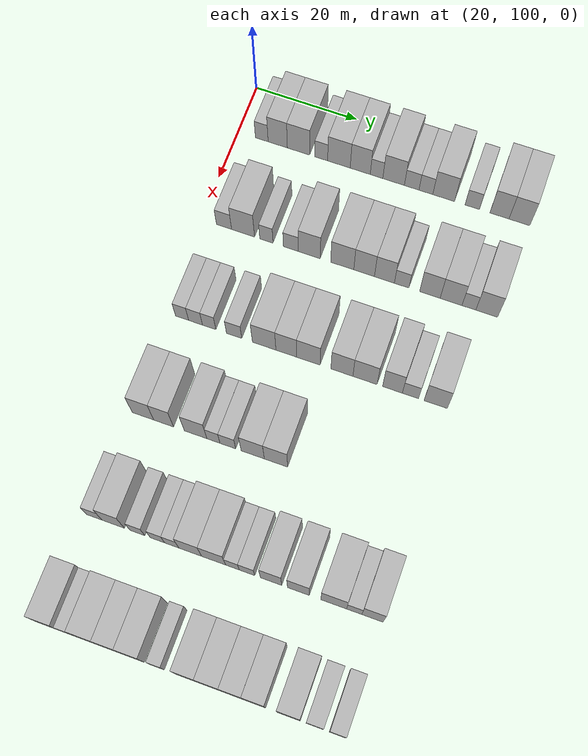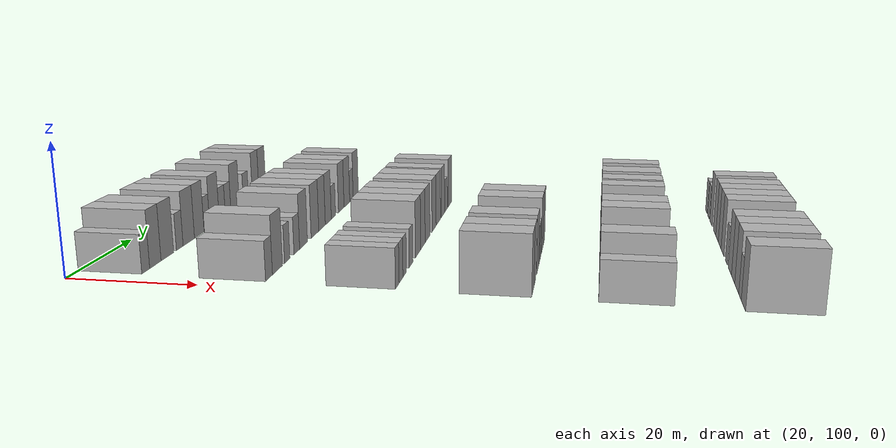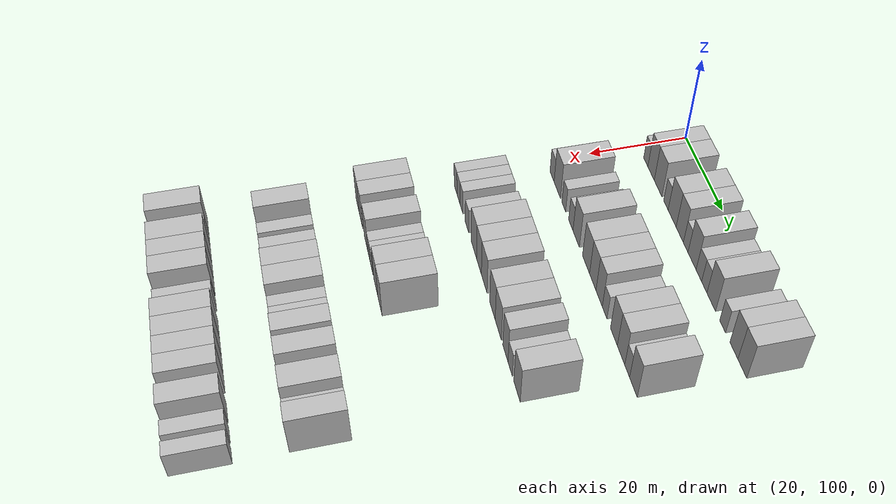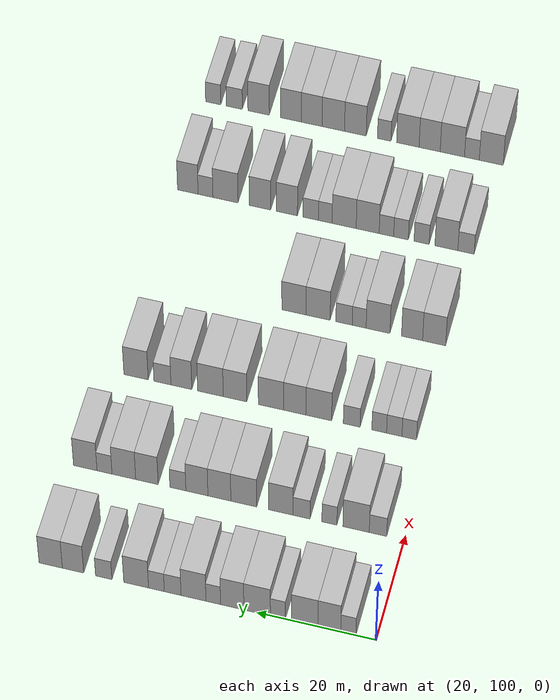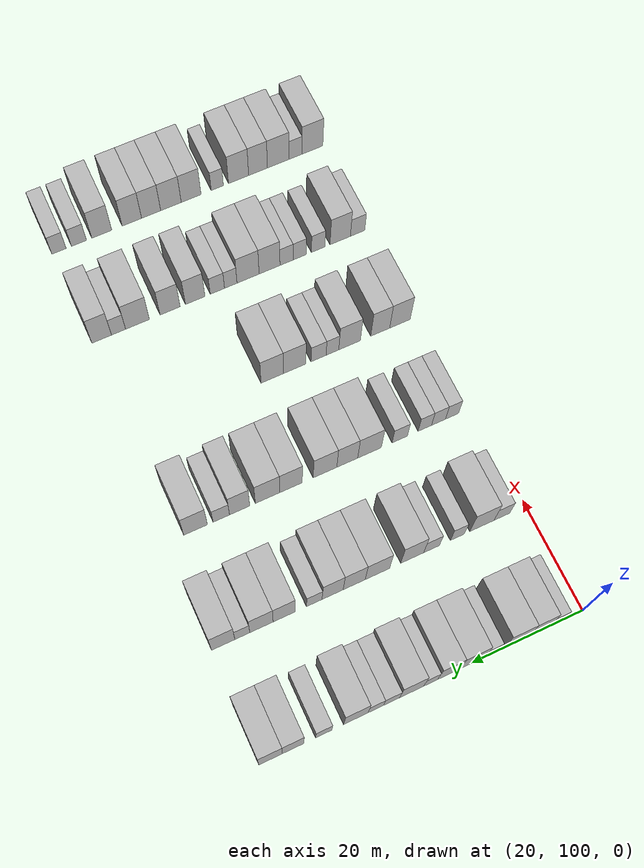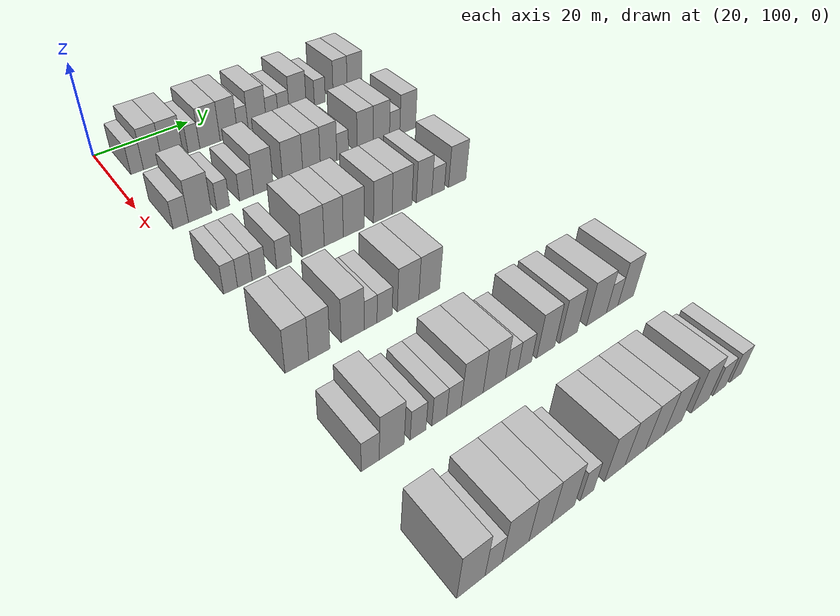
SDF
<sdf version="1.6">
 <world name="default">
  <model name="building_116">
   <static>1</static>
   <pose>25.0000 104.6992 0 0.000000 0.000000 0.000000</pose>
   <link name="link">
    <pose>0 0 3.00 0 0 0</pose>
    <collision name="collision"><geometry><box><size>10.0000 2.5293 6.0000</size></box></geometry></collision>
    <visual name="visual">
     <cast_shadows>0</cast_shadows>
     <geometry><box><size>10.0000 2.5293 6.0000</size></box></geometry>
     <material>
      <script>
       <uri>model://HANNAS_wall/materials/scripts</uri>
       <uri>model://HANNAS_wall/materials/textures</uri>
       <name>vrc/HANNAS_wall</name>
      </script>
     </material>
    </visual>
   </link>
  </model>
  <model name="building_117">
   <static>1</static>
   <pose>25.0000 107.8655 0 0.000000 0.000000 0.000000</pose>
   <link name="link">
    <pose>0 0 4.50 0 0 0</pose>
    <collision name="collision"><geometry><box><size>10.0000 3.8033 9.0000</size></box></geometry></collision>
    <visual name="visual">
     <cast_shadows>0</cast_shadows>
     <geometry><box><size>10.0000 3.8033 9.0000</size></box></geometry>
     <material>
      <script>
       <uri>model://HANNAS_wall/materials/scripts</uri>
       <uri>model://HANNAS_wall/materials/textures</uri>
       <name>vrc/HANNAS_wall</name>
      </script>
     </material>
    </visual>
   </link>
  </model>
  <model name="building_118">
   <static>1</static>
   <pose>25.0000 111.9787 0 0.000000 0.000000 0.000000</pose>
   <link name="link">
    <pose>0 0 4.50 0 0 0</pose>
    <collision name="collision"><geometry><box><size>10.0000 4.4231 9.0000</size></box></geometry></collision>
    <visual name="visual">
     <cast_shadows>0</cast_shadows>
     <geometry><box><size>10.0000 4.4231 9.0000</size></box></geometry>
     <material>
      <script>
       <uri>model://HANNAS_wall/materials/scripts</uri>
       <uri>model://HANNAS_wall/materials/textures</uri>
       <name>vrc/HANNAS_wall</name>
      </script>
     </material>
    </visual>
   </link>
  </model>
  <model name="building_119">
   <static>1</static>
   <pose>25.0000 116.4488 0 0.000000 0.000000 0.000000</pose>
   <link name="link">
    <pose>0 0 3.00 0 0 0</pose>
    <collision name="collision"><geometry><box><size>10.0000 2.5171 6.0000</size></box></geometry></collision>
    <visual name="visual">
     <cast_shadows>0</cast_shadows>
     <geometry><box><size>10.0000 2.5171 6.0000</size></box></geometry>
     <material>
      <script>
       <uri>model://HANNAS_wall/materials/scripts</uri>
       <uri>model://HANNAS_wall/materials/textures</uri>
       <name>vrc/HANNAS_wall</name>
      </script>
     </material>
    </visual>
   </link>
  </model>
  <model name="building_120">
   <static>1</static>
   <pose>25.0000 119.9229 0 0.000000 0.000000 0.000000</pose>
   <link name="link">
    <pose>0 0 4.50 0 0 0</pose>
    <collision name="collision"><geometry><box><size>10.0000 4.4311 9.0000</size></box></geometry></collision>
    <visual name="visual">
     <cast_shadows>0</cast_shadows>
     <geometry><box><size>10.0000 4.4311 9.0000</size></box></geometry>
     <material>
      <script>
       <uri>model://HANNAS_wall/materials/scripts</uri>
       <uri>model://HANNAS_wall/materials/textures</uri>
       <name>vrc/HANNAS_wall</name>
      </script>
     </material>
    </visual>
   </link>
  </model>
  <model name="building_121">
   <static>1</static>
   <pose>25.0000 124.0963 0 0.000000 0.000000 0.000000</pose>
   <link name="link">
    <pose>0 0 4.50 0 0 0</pose>
    <collision name="collision"><geometry><box><size>10.0000 3.9156 9.0000</size></box></geometry></collision>
    <visual name="visual">
     <cast_shadows>0</cast_shadows>
     <geometry><box><size>10.0000 3.9156 9.0000</size></box></geometry>
     <material>
      <script>
       <uri>model://HANNAS_wall/materials/scripts</uri>
       <uri>model://HANNAS_wall/materials/textures</uri>
       <name>vrc/HANNAS_wall</name>
      </script>
     </material>
    </visual>
   </link>
  </model>
  <model name="building_122">
   <static>1</static>
   <pose>25.0000 127.2778 0 0.000000 0.000000 0.000000</pose>
   <link name="link">
    <pose>0 0 3.00 0 0 0</pose>
    <collision name="collision"><geometry><box><size>10.0000 2.4475 6.0000</size></box></geometry></collision>
    <visual name="visual">
     <cast_shadows>0</cast_shadows>
     <geometry><box><size>10.0000 2.4475 6.0000</size></box></geometry>
     <material>
      <script>
       <uri>model://HANNAS_wall/materials/scripts</uri>
       <uri>model://HANNAS_wall/materials/textures</uri>
       <name>vrc/HANNAS_wall</name>
      </script>
     </material>
    </visual>
   </link>
  </model>
  <model name="building_123">
   <static>1</static>
   <pose>25.0000 130.5969 0 0.000000 0.000000 0.000000</pose>
   <link name="link">
    <pose>0 0 4.50 0 0 0</pose>
    <collision name="collision"><geometry><box><size>10.0000 4.1907 9.0000</size></box></geometry></collision>
    <visual name="visual">
     <cast_shadows>0</cast_shadows>
     <geometry><box><size>10.0000 4.1907 9.0000</size></box></geometry>
     <material>
      <script>
       <uri>model://HANNAS_wall/materials/scripts</uri>
       <uri>model://HANNAS_wall/materials/textures</uri>
       <name>vrc/HANNAS_wall</name>
      </script>
     </material>
    </visual>
   </link>
  </model>
  <model name="building_124">
   <static>1</static>
   <pose>25.0000 134.1016 0 0.000000 0.000000 0.000000</pose>
   <link name="link">
    <pose>0 0 3.00 0 0 0</pose>
    <collision name="collision"><geometry><box><size>10.0000 2.8187 6.0000</size></box></geometry></collision>
    <visual name="visual">
     <cast_shadows>0</cast_shadows>
     <geometry><box><size>10.0000 2.8187 6.0000</size></box></geometry>
     <material>
      <script>
       <uri>model://HANNAS_wall/materials/scripts</uri>
       <uri>model://HANNAS_wall/materials/textures</uri>
       <name>vrc/HANNAS_wall</name>
      </script>
     </material>
    </visual>
   </link>
  </model>
  <model name="building_125">
   <static>1</static>
   <pose>25.0000 136.8427 0 0.000000 0.000000 0.000000</pose>
   <link name="link">
    <pose>0 0 3.00 0 0 0</pose>
    <collision name="collision"><geometry><box><size>10.0000 2.6635 6.0000</size></box></geometry></collision>
    <visual name="visual">
     <cast_shadows>0</cast_shadows>
     <geometry><box><size>10.0000 2.6635 6.0000</size></box></geometry>
     <material>
      <script>
       <uri>model://HANNAS_wall/materials/scripts</uri>
       <uri>model://HANNAS_wall/materials/textures</uri>
       <name>vrc/HANNAS_wall</name>
      </script>
     </material>
    </visual>
   </link>
  </model>
  <model name="building_126">
   <static>1</static>
   <pose>25.0000 140.2651 0 0.000000 0.000000 0.000000</pose>
   <link name="link">
    <pose>0 0 4.50 0 0 0</pose>
    <collision name="collision"><geometry><box><size>10.0000 4.1813 9.0000</size></box></geometry></collision>
    <visual name="visual">
     <cast_shadows>0</cast_shadows>
     <geometry><box><size>10.0000 4.1813 9.0000</size></box></geometry>
     <material>
      <script>
       <uri>model://HANNAS_wall/materials/scripts</uri>
       <uri>model://HANNAS_wall/materials/textures</uri>
       <name>vrc/HANNAS_wall</name>
      </script>
     </material>
    </visual>
   </link>
  </model>
  <model name="building_127">
   <static>1</static>
   <pose>25.0000 145.7392 0 0.000000 0.000000 0.000000</pose>
   <link name="link">
    <pose>0 0 3.00 0 0 0</pose>
    <collision name="collision"><geometry><box><size>10.0000 2.7670 6.0000</size></box></geometry></collision>
    <visual name="visual">
     <cast_shadows>0</cast_shadows>
     <geometry><box><size>10.0000 2.7670 6.0000</size></box></geometry>
     <material>
      <script>
       <uri>model://HANNAS_wall/materials/scripts</uri>
       <uri>model://HANNAS_wall/materials/textures</uri>
       <name>vrc/HANNAS_wall</name>
      </script>
     </material>
    </visual>
   </link>
  </model>
  <model name="building_128">
   <static>1</static>
   <pose>25.0000 150.9312 0 0.000000 0.000000 0.000000</pose>
   <link name="link">
    <pose>0 0 4.50 0 0 0</pose>
    <collision name="collision"><geometry><box><size>10.0000 3.6171 9.0000</size></box></geometry></collision>
    <visual name="visual">
     <cast_shadows>0</cast_shadows>
     <geometry><box><size>10.0000 3.6171 9.0000</size></box></geometry>
     <material>
      <script>
       <uri>model://HANNAS_wall/materials/scripts</uri>
       <uri>model://HANNAS_wall/materials/textures</uri>
       <name>vrc/HANNAS_wall</name>
      </script>
     </material>
    </visual>
   </link>
  </model>
  <model name="building_129">
   <static>1</static>
   <pose>25.0000 154.7166 0 0.000000 0.000000 0.000000</pose>
   <link name="link">
    <pose>0 0 4.50 0 0 0</pose>
    <collision name="collision"><geometry><box><size>10.0000 3.9537 9.0000</size></box></geometry></collision>
    <visual name="visual">
     <cast_shadows>0</cast_shadows>
     <geometry><box><size>10.0000 3.9537 9.0000</size></box></geometry>
     <material>
      <script>
       <uri>model://HANNAS_wall/materials/scripts</uri>
       <uri>model://HANNAS_wall/materials/textures</uri>
       <name>vrc/HANNAS_wall</name>
      </script>
     </material>
    </visual>
   </link>
  </model>
  <model name="building_282">
   <static>1</static>
   <pose>44.0000 104.4589 0 0.000000 0.000000 0.000000</pose>
   <link name="link">
    <pose>0 0 3.00 0 0 0</pose>
    <collision name="collision"><geometry><box><size>10.0000 2.9417 6.0000</size></box></geometry></collision>
    <visual name="visual">
     <cast_shadows>0</cast_shadows>
     <geometry><box><size>10.0000 2.9417 6.0000</size></box></geometry>
     <material>
      <script>
       <uri>model://HANNAS_wall/materials/scripts</uri>
       <uri>model://HANNAS_wall/materials/textures</uri>
       <name>vrc/HANNAS_wall</name>
      </script>
     </material>
    </visual>
   </link>
  </model>
  <model name="building_283">
   <static>1</static>
   <pose>44.0000 108.1613 0 0.000000 0.000000 0.000000</pose>
   <link name="link">
    <pose>0 0 4.50 0 0 0</pose>
    <collision name="collision"><geometry><box><size>10.0000 4.4629 9.0000</size></box></geometry></collision>
    <visual name="visual">
     <cast_shadows>0</cast_shadows>
     <geometry><box><size>10.0000 4.4629 9.0000</size></box></geometry>
     <material>
      <script>
       <uri>model://HANNAS_wall/materials/scripts</uri>
       <uri>model://HANNAS_wall/materials/textures</uri>
       <name>vrc/HANNAS_wall</name>
      </script>
     </material>
    </visual>
   </link>
  </model>
  <model name="building_284">
   <static>1</static>
   <pose>44.0000 112.6686 0 0.000000 0.000000 0.000000</pose>
   <link name="link">
    <pose>0 0 3.00 0 0 0</pose>
    <collision name="collision"><geometry><box><size>10.0000 2.5518 6.0000</size></box></geometry></collision>
    <visual name="visual">
     <cast_shadows>0</cast_shadows>
     <geometry><box><size>10.0000 2.5518 6.0000</size></box></geometry>
     <material>
      <script>
       <uri>model://HANNAS_wall/materials/scripts</uri>
       <uri>model://HANNAS_wall/materials/textures</uri>
       <name>vrc/HANNAS_wall</name>
      </script>
     </material>
    </visual>
   </link>
  </model>
  <model name="building_285">
   <static>1</static>
   <pose>44.0000 117.3820 0 0.000000 0.000000 0.000000</pose>
   <link name="link">
    <pose>0 0 3.00 0 0 0</pose>
    <collision name="collision"><geometry><box><size>10.0000 2.8751 6.0000</size></box></geometry></collision>
    <visual name="visual">
     <cast_shadows>0</cast_shadows>
     <geometry><box><size>10.0000 2.8751 6.0000</size></box></geometry>
     <material>
      <script>
       <uri>model://HANNAS_wall/materials/scripts</uri>
       <uri>model://HANNAS_wall/materials/textures</uri>
       <name>vrc/HANNAS_wall</name>
      </script>
     </material>
    </visual>
   </link>
  </model>
  <model name="building_286">
   <static>1</static>
   <pose>44.0000 120.9029 0 0.000000 0.000000 0.000000</pose>
   <link name="link">
    <pose>0 0 4.50 0 0 0</pose>
    <collision name="collision"><geometry><box><size>10.0000 4.1667 9.0000</size></box></geometry></collision>
    <visual name="visual">
     <cast_shadows>0</cast_shadows>
     <geometry><box><size>10.0000 4.1667 9.0000</size></box></geometry>
     <material>
      <script>
       <uri>model://HANNAS_wall/materials/scripts</uri>
       <uri>model://HANNAS_wall/materials/textures</uri>
       <name>vrc/HANNAS_wall</name>
      </script>
     </material>
    </visual>
   </link>
  </model>
  <model name="building_287">
   <static>1</static>
   <pose>44.0000 127.1863 0 0.000000 0.000000 0.000000</pose>
   <link name="link">
    <pose>0 0 4.50 0 0 0</pose>
    <collision name="collision"><geometry><box><size>10.0000 4.4002 9.0000</size></box></geometry></collision>
    <visual name="visual">
     <cast_shadows>0</cast_shadows>
     <geometry><box><size>10.0000 4.4002 9.0000</size></box></geometry>
     <material>
      <script>
       <uri>model://HANNAS_wall/materials/scripts</uri>
       <uri>model://HANNAS_wall/materials/textures</uri>
       <name>vrc/HANNAS_wall</name>
      </script>
     </material>
    </visual>
   </link>
  </model>
  <model name="building_288">
   <static>1</static>
   <pose>44.0000 131.3420 0 0.000000 0.000000 0.000000</pose>
   <link name="link">
    <pose>0 0 4.50 0 0 0</pose>
    <collision name="collision"><geometry><box><size>10.0000 3.9112 9.0000</size></box></geometry></collision>
    <visual name="visual">
     <cast_shadows>0</cast_shadows>
     <geometry><box><size>10.0000 3.9112 9.0000</size></box></geometry>
     <material>
      <script>
       <uri>model://HANNAS_wall/materials/scripts</uri>
       <uri>model://HANNAS_wall/materials/textures</uri>
       <name>vrc/HANNAS_wall</name>
      </script>
     </material>
    </visual>
   </link>
  </model>
  <model name="building_289">
   <static>1</static>
   <pose>44.0000 135.1767 0 0.000000 0.000000 0.000000</pose>
   <link name="link">
    <pose>0 0 4.50 0 0 0</pose>
    <collision name="collision"><geometry><box><size>10.0000 3.7581 9.0000</size></box></geometry></collision>
    <visual name="visual">
     <cast_shadows>0</cast_shadows>
     <geometry><box><size>10.0000 3.7581 9.0000</size></box></geometry>
     <material>
      <script>
       <uri>model://HANNAS_wall/materials/scripts</uri>
       <uri>model://HANNAS_wall/materials/textures</uri>
       <name>vrc/HANNAS_wall</name>
      </script>
     </material>
    </visual>
   </link>
  </model>
  <model name="building_290">
   <static>1</static>
   <pose>44.0000 138.4250 0 0.000000 0.000000 0.000000</pose>
   <link name="link">
    <pose>0 0 3.00 0 0 0</pose>
    <collision name="collision"><geometry><box><size>10.0000 2.7385 6.0000</size></box></geometry></collision>
    <visual name="visual">
     <cast_shadows>0</cast_shadows>
     <geometry><box><size>10.0000 2.7385 6.0000</size></box></geometry>
     <material>
      <script>
       <uri>model://HANNAS_wall/materials/scripts</uri>
       <uri>model://HANNAS_wall/materials/textures</uri>
       <name>vrc/HANNAS_wall</name>
      </script>
     </material>
    </visual>
   </link>
  </model>
  <model name="building_291">
   <static>1</static>
   <pose>44.0000 143.7155 0 0.000000 0.000000 0.000000</pose>
   <link name="link">
    <pose>0 0 4.50 0 0 0</pose>
    <collision name="collision"><geometry><box><size>10.0000 3.8426 9.0000</size></box></geometry></collision>
    <visual name="visual">
     <cast_shadows>0</cast_shadows>
     <geometry><box><size>10.0000 3.8426 9.0000</size></box></geometry>
     <material>
      <script>
       <uri>model://HANNAS_wall/materials/scripts</uri>
       <uri>model://HANNAS_wall/materials/textures</uri>
       <name>vrc/HANNAS_wall</name>
      </script>
     </material>
    </visual>
   </link>
  </model>
  <model name="building_292">
   <static>1</static>
   <pose>44.0000 147.6690 0 0.000000 0.000000 0.000000</pose>
   <link name="link">
    <pose>0 0 4.50 0 0 0</pose>
    <collision name="collision"><geometry><box><size>10.0000 4.0643 9.0000</size></box></geometry></collision>
    <visual name="visual">
     <cast_shadows>0</cast_shadows>
     <geometry><box><size>10.0000 4.0643 9.0000</size></box></geometry>
     <material>
      <script>
       <uri>model://HANNAS_wall/materials/scripts</uri>
       <uri>model://HANNAS_wall/materials/textures</uri>
       <name>vrc/HANNAS_wall</name>
      </script>
     </material>
    </visual>
   </link>
  </model>
  <model name="building_293">
   <static>1</static>
   <pose>44.0000 150.9873 0 0.000000 0.000000 0.000000</pose>
   <link name="link">
    <pose>0 0 3.00 0 0 0</pose>
    <collision name="collision"><geometry><box><size>10.0000 2.5724 6.0000</size></box></geometry></collision>
    <visual name="visual">
     <cast_shadows>0</cast_shadows>
     <geometry><box><size>10.0000 2.5724 6.0000</size></box></geometry>
     <material>
      <script>
       <uri>model://HANNAS_wall/materials/scripts</uri>
       <uri>model://HANNAS_wall/materials/textures</uri>
       <name>vrc/HANNAS_wall</name>
      </script>
     </material>
    </visual>
   </link>
  </model>
  <model name="building_294">
   <static>1</static>
   <pose>44.0000 154.2898 0 0.000000 0.000000 0.000000</pose>
   <link name="link">
    <pose>0 0 4.50 0 0 0</pose>
    <collision name="collision"><geometry><box><size>10.0000 4.0327 9.0000</size></box></geometry></collision>
    <visual name="visual">
     <cast_shadows>0</cast_shadows>
     <geometry><box><size>10.0000 4.0327 9.0000</size></box></geometry>
     <material>
      <script>
       <uri>model://HANNAS_wall/materials/scripts</uri>
       <uri>model://HANNAS_wall/materials/textures</uri>
       <name>vrc/HANNAS_wall</name>
      </script>
     </material>
    </visual>
   </link>
  </model>
  <model name="building_448">
   <static>1</static>
   <pose>63.0000 103.8126 0 0.000000 0.000000 0.000000</pose>
   <link name="link">
    <pose>0 0 3.00 0 0 0</pose>
    <collision name="collision"><geometry><box><size>10.0000 2.4909 6.0000</size></box></geometry></collision>
    <visual name="visual">
     <cast_shadows>0</cast_shadows>
     <geometry><box><size>10.0000 2.4909 6.0000</size></box></geometry>
     <material>
      <script>
       <uri>model://HANNAS_wall/materials/scripts</uri>
       <uri>model://HANNAS_wall/materials/textures</uri>
       <name>vrc/HANNAS_wall</name>
      </script>
     </material>
    </visual>
   </link>
  </model>
  <model name="building_449">
   <static>1</static>
   <pose>63.0000 106.3737 0 0.000000 0.000000 0.000000</pose>
   <link name="link">
    <pose>0 0 3.00 0 0 0</pose>
    <collision name="collision"><geometry><box><size>10.0000 2.6311 6.0000</size></box></geometry></collision>
    <visual name="visual">
     <cast_shadows>0</cast_shadows>
     <geometry><box><size>10.0000 2.6311 6.0000</size></box></geometry>
     <material>
      <script>
       <uri>model://HANNAS_wall/materials/scripts</uri>
       <uri>model://HANNAS_wall/materials/textures</uri>
       <name>vrc/HANNAS_wall</name>
      </script>
     </material>
    </visual>
   </link>
  </model>
  <model name="building_450">
   <static>1</static>
   <pose>63.0000 108.9542 0 0.000000 0.000000 0.000000</pose>
   <link name="link">
    <pose>0 0 3.00 0 0 0</pose>
    <collision name="collision"><geometry><box><size>10.0000 2.5299 6.0000</size></box></geometry></collision>
    <visual name="visual">
     <cast_shadows>0</cast_shadows>
     <geometry><box><size>10.0000 2.5299 6.0000</size></box></geometry>
     <material>
      <script>
       <uri>model://HANNAS_wall/materials/scripts</uri>
       <uri>model://HANNAS_wall/materials/textures</uri>
       <name>vrc/HANNAS_wall</name>
      </script>
     </material>
    </visual>
   </link>
  </model>
  <model name="building_451">
   <static>1</static>
   <pose>63.0000 113.6609 0 0.000000 0.000000 0.000000</pose>
   <link name="link">
    <pose>0 0 3.00 0 0 0</pose>
    <collision name="collision"><geometry><box><size>10.0000 2.8834 6.0000</size></box></geometry></collision>
    <visual name="visual">
     <cast_shadows>0</cast_shadows>
     <geometry><box><size>10.0000 2.8834 6.0000</size></box></geometry>
     <material>
      <script>
       <uri>model://HANNAS_wall/materials/scripts</uri>
       <uri>model://HANNAS_wall/materials/textures</uri>
       <name>vrc/HANNAS_wall</name>
      </script>
     </material>
    </visual>
   </link>
  </model>
  <model name="building_452">
   <static>1</static>
   <pose>63.0000 119.2993 0 0.000000 0.000000 0.000000</pose>
   <link name="link">
    <pose>0 0 4.50 0 0 0</pose>
    <collision name="collision"><geometry><box><size>10.0000 4.3934 9.0000</size></box></geometry></collision>
    <visual name="visual">
     <cast_shadows>0</cast_shadows>
     <geometry><box><size>10.0000 4.3934 9.0000</size></box></geometry>
     <material>
      <script>
       <uri>model://HANNAS_wall/materials/scripts</uri>
       <uri>model://HANNAS_wall/materials/textures</uri>
       <name>vrc/HANNAS_wall</name>
      </script>
     </material>
    </visual>
   </link>
  </model>
  <model name="building_453">
   <static>1</static>
   <pose>63.0000 123.4294 0 0.000000 0.000000 0.000000</pose>
   <link name="link">
    <pose>0 0 4.50 0 0 0</pose>
    <collision name="collision"><geometry><box><size>10.0000 3.8668 9.0000</size></box></geometry></collision>
    <visual name="visual">
     <cast_shadows>0</cast_shadows>
     <geometry><box><size>10.0000 3.8668 9.0000</size></box></geometry>
     <material>
      <script>
       <uri>model://HANNAS_wall/materials/scripts</uri>
       <uri>model://HANNAS_wall/materials/textures</uri>
       <name>vrc/HANNAS_wall</name>
      </script>
     </material>
    </visual>
   </link>
  </model>
  <model name="building_454">
   <static>1</static>
   <pose>63.0000 127.5350 0 0.000000 0.000000 0.000000</pose>
   <link name="link">
    <pose>0 0 4.50 0 0 0</pose>
    <collision name="collision"><geometry><box><size>10.0000 4.3444 9.0000</size></box></geometry></collision>
    <visual name="visual">
     <cast_shadows>0</cast_shadows>
     <geometry><box><size>10.0000 4.3444 9.0000</size></box></geometry>
     <material>
      <script>
       <uri>model://HANNAS_wall/materials/scripts</uri>
       <uri>model://HANNAS_wall/materials/textures</uri>
       <name>vrc/HANNAS_wall</name>
      </script>
     </material>
    </visual>
   </link>
  </model>
  <model name="building_455">
   <static>1</static>
   <pose>63.0000 133.7358 0 0.000000 0.000000 0.000000</pose>
   <link name="link">
    <pose>0 0 4.50 0 0 0</pose>
    <collision name="collision"><geometry><box><size>10.0000 4.0572 9.0000</size></box></geometry></collision>
    <visual name="visual">
     <cast_shadows>0</cast_shadows>
     <geometry><box><size>10.0000 4.0572 9.0000</size></box></geometry>
     <material>
      <script>
       <uri>model://HANNAS_wall/materials/scripts</uri>
       <uri>model://HANNAS_wall/materials/textures</uri>
       <name>vrc/HANNAS_wall</name>
      </script>
     </material>
    </visual>
   </link>
  </model>
  <model name="building_456">
   <static>1</static>
   <pose>63.0000 137.9854 0 0.000000 0.000000 0.000000</pose>
   <link name="link">
    <pose>0 0 4.50 0 0 0</pose>
    <collision name="collision"><geometry><box><size>10.0000 4.4420 9.0000</size></box></geometry></collision>
    <visual name="visual">
     <cast_shadows>0</cast_shadows>
     <geometry><box><size>10.0000 4.4420 9.0000</size></box></geometry>
     <material>
      <script>
       <uri>model://HANNAS_wall/materials/scripts</uri>
       <uri>model://HANNAS_wall/materials/textures</uri>
       <name>vrc/HANNAS_wall</name>
      </script>
     </material>
    </visual>
   </link>
  </model>
  <model name="building_457">
   <static>1</static>
   <pose>63.0000 143.0158 0 0.000000 0.000000 0.000000</pose>
   <link name="link">
    <pose>0 0 4.50 0 0 0</pose>
    <collision name="collision"><geometry><box><size>10.0000 3.6188 9.0000</size></box></geometry></collision>
    <visual name="visual">
     <cast_shadows>0</cast_shadows>
     <geometry><box><size>10.0000 3.6188 9.0000</size></box></geometry>
     <material>
      <script>
       <uri>model://HANNAS_wall/materials/scripts</uri>
       <uri>model://HANNAS_wall/materials/textures</uri>
       <name>vrc/HANNAS_wall</name>
      </script>
     </material>
    </visual>
   </link>
  </model>
  <model name="building_458">
   <static>1</static>
   <pose>63.0000 146.2998 0 0.000000 0.000000 0.000000</pose>
   <link name="link">
    <pose>0 0 3.00 0 0 0</pose>
    <collision name="collision"><geometry><box><size>10.0000 2.9492 6.0000</size></box></geometry></collision>
    <visual name="visual">
     <cast_shadows>0</cast_shadows>
     <geometry><box><size>10.0000 2.9492 6.0000</size></box></geometry>
     <material>
      <script>
       <uri>model://HANNAS_wall/materials/scripts</uri>
       <uri>model://HANNAS_wall/materials/textures</uri>
       <name>vrc/HANNAS_wall</name>
      </script>
     </material>
    </visual>
   </link>
  </model>
  <model name="building_459">
   <static>1</static>
   <pose>63.0000 150.8831 0 0.000000 0.000000 0.000000</pose>
   <link name="link">
    <pose>0 0 4.50 0 0 0</pose>
    <collision name="collision"><geometry><box><size>10.0000 4.2174 9.0000</size></box></geometry></collision>
    <visual name="visual">
     <cast_shadows>0</cast_shadows>
     <geometry><box><size>10.0000 4.2174 9.0000</size></box></geometry>
     <material>
      <script>
       <uri>model://HANNAS_wall/materials/scripts</uri>
       <uri>model://HANNAS_wall/materials/textures</uri>
       <name>vrc/HANNAS_wall</name>
      </script>
     </material>
    </visual>
   </link>
  </model>
  <model name="building_620">
   <static>1</static>
   <pose>82.0000 104.1337 0 0.000000 0.000000 0.000000</pose>
   <link name="link">
    <pose>0 0 4.50 0 0 0</pose>
    <collision name="collision"><geometry><box><size>10.0000 3.9851 9.0000</size></box></geometry></collision>
    <visual name="visual">
     <cast_shadows>0</cast_shadows>
     <geometry><box><size>10.0000 3.9851 9.0000</size></box></geometry>
     <material>
      <script>
       <uri>model://HANNAS_wall/materials/scripts</uri>
       <uri>model://HANNAS_wall/materials/textures</uri>
       <name>vrc/HANNAS_wall</name>
      </script>
     </material>
    </visual>
   </link>
  </model>
  <model name="building_621">
   <static>1</static>
   <pose>82.0000 107.9526 0 0.000000 0.000000 0.000000</pose>
   <link name="link">
    <pose>0 0 4.50 0 0 0</pose>
    <collision name="collision"><geometry><box><size>10.0000 3.6526 9.0000</size></box></geometry></collision>
    <visual name="visual">
     <cast_shadows>0</cast_shadows>
     <geometry><box><size>10.0000 3.6526 9.0000</size></box></geometry>
     <material>
      <script>
       <uri>model://HANNAS_wall/materials/scripts</uri>
       <uri>model://HANNAS_wall/materials/textures</uri>
       <name>vrc/HANNAS_wall</name>
      </script>
     </material>
    </visual>
   </link>
  </model>
  <model name="building_622">
   <static>1</static>
   <pose>82.0000 113.8478 0 0.000000 0.000000 0.000000</pose>
   <link name="link">
    <pose>0 0 4.50 0 0 0</pose>
    <collision name="collision"><geometry><box><size>10.0000 4.1380 9.0000</size></box></geometry></collision>
    <visual name="visual">
     <cast_shadows>0</cast_shadows>
     <geometry><box><size>10.0000 4.1380 9.0000</size></box></geometry>
     <material>
      <script>
       <uri>model://HANNAS_wall/materials/scripts</uri>
       <uri>model://HANNAS_wall/materials/textures</uri>
       <name>vrc/HANNAS_wall</name>
      </script>
     </material>
    </visual>
   </link>
  </model>
  <model name="building_623">
   <static>1</static>
   <pose>82.0000 117.1201 0 0.000000 0.000000 0.000000</pose>
   <link name="link">
    <pose>0 0 3.00 0 0 0</pose>
    <collision name="collision"><geometry><box><size>10.0000 2.4066 6.0000</size></box></geometry></collision>
    <visual name="visual">
     <cast_shadows>0</cast_shadows>
     <geometry><box><size>10.0000 2.4066 6.0000</size></box></geometry>
     <material>
      <script>
       <uri>model://HANNAS_wall/materials/scripts</uri>
       <uri>model://HANNAS_wall/materials/textures</uri>
       <name>vrc/HANNAS_wall</name>
      </script>
     </material>
    </visual>
   </link>
  </model>
  <model name="building_624">
   <static>1</static>
   <pose>82.0000 119.7560 0 0.000000 0.000000 0.000000</pose>
   <link name="link">
    <pose>0 0 3.00 0 0 0</pose>
    <collision name="collision"><geometry><box><size>10.0000 2.8651 6.0000</size></box></geometry></collision>
    <visual name="visual">
     <cast_shadows>0</cast_shadows>
     <geometry><box><size>10.0000 2.8651 6.0000</size></box></geometry>
     <material>
      <script>
       <uri>model://HANNAS_wall/materials/scripts</uri>
       <uri>model://HANNAS_wall/materials/textures</uri>
       <name>vrc/HANNAS_wall</name>
      </script>
     </material>
    </visual>
   </link>
  </model>
  <model name="building_625">
   <static>1</static>
   <pose>82.0000 124.2914 0 0.000000 0.000000 0.000000</pose>
   <link name="link">
    <pose>0 0 4.50 0 0 0</pose>
    <collision name="collision"><geometry><box><size>10.0000 4.2058 9.0000</size></box></geometry></collision>
    <visual name="visual">
     <cast_shadows>0</cast_shadows>
     <geometry><box><size>10.0000 4.2058 9.0000</size></box></geometry>
     <material>
      <script>
       <uri>model://HANNAS_wall/materials/scripts</uri>
       <uri>model://HANNAS_wall/materials/textures</uri>
       <name>vrc/HANNAS_wall</name>
      </script>
     </material>
    </visual>
   </link>
  </model>
  <model name="building_626">
   <static>1</static>
   <pose>82.0000 128.5011 0 0.000000 0.000000 0.000000</pose>
   <link name="link">
    <pose>0 0 4.50 0 0 0</pose>
    <collision name="collision"><geometry><box><size>10.0000 4.2134 9.0000</size></box></geometry></collision>
    <visual name="visual">
     <cast_shadows>0</cast_shadows>
     <geometry><box><size>10.0000 4.2134 9.0000</size></box></geometry>
     <material>
      <script>
       <uri>model://HANNAS_wall/materials/scripts</uri>
       <uri>model://HANNAS_wall/materials/textures</uri>
       <name>vrc/HANNAS_wall</name>
      </script>
     </material>
    </visual>
   </link>
  </model>
  <model name="building_786">
   <static>1</static>
   <pose>101.0000 103.1046 0 0.000000 0.000000 0.000000</pose>
   <link name="link">
    <pose>0 0 3.00 0 0 0</pose>
    <collision name="collision"><geometry><box><size>10.0000 2.8525 6.0000</size></box></geometry></collision>
    <visual name="visual">
     <cast_shadows>0</cast_shadows>
     <geometry><box><size>10.0000 2.8525 6.0000</size></box></geometry>
     <material>
      <script>
       <uri>model://HANNAS_wall/materials/scripts</uri>
       <uri>model://HANNAS_wall/materials/textures</uri>
       <name>vrc/HANNAS_wall</name>
      </script>
     </material>
    </visual>
   </link>
  </model>
  <model name="building_787">
   <static>1</static>
   <pose>101.0000 106.5450 0 0.000000 0.000000 0.000000</pose>
   <link name="link">
    <pose>0 0 4.50 0 0 0</pose>
    <collision name="collision"><geometry><box><size>10.0000 4.0284 9.0000</size></box></geometry></collision>
    <visual name="visual">
     <cast_shadows>0</cast_shadows>
     <geometry><box><size>10.0000 4.0284 9.0000</size></box></geometry>
     <material>
      <script>
       <uri>model://HANNAS_wall/materials/scripts</uri>
       <uri>model://HANNAS_wall/materials/textures</uri>
       <name>vrc/HANNAS_wall</name>
      </script>
     </material>
    </visual>
   </link>
  </model>
  <model name="building_788">
   <static>1</static>
   <pose>101.0000 110.8907 0 0.000000 0.000000 0.000000</pose>
   <link name="link">
    <pose>0 0 3.00 0 0 0</pose>
    <collision name="collision"><geometry><box><size>10.0000 2.6630 6.0000</size></box></geometry></collision>
    <visual name="visual">
     <cast_shadows>0</cast_shadows>
     <geometry><box><size>10.0000 2.6630 6.0000</size></box></geometry>
     <material>
      <script>
       <uri>model://HANNAS_wall/materials/scripts</uri>
       <uri>model://HANNAS_wall/materials/textures</uri>
       <name>vrc/HANNAS_wall</name>
      </script>
     </material>
    </visual>
   </link>
  </model>
  <model name="building_789">
   <static>1</static>
   <pose>101.0000 114.5084 0 0.000000 0.000000 0.000000</pose>
   <link name="link">
    <pose>0 0 3.00 0 0 0</pose>
    <collision name="collision"><geometry><box><size>10.0000 2.5723 6.0000</size></box></geometry></collision>
    <visual name="visual">
     <cast_shadows>0</cast_shadows>
     <geometry><box><size>10.0000 2.5723 6.0000</size></box></geometry>
     <material>
      <script>
       <uri>model://HANNAS_wall/materials/scripts</uri>
       <uri>model://HANNAS_wall/materials/textures</uri>
       <name>vrc/HANNAS_wall</name>
      </script>
     </material>
    </visual>
   </link>
  </model>
  <model name="building_790">
   <static>1</static>
   <pose>101.0000 117.0721 0 0.000000 0.000000 0.000000</pose>
   <link name="link">
    <pose>0 0 3.00 0 0 0</pose>
    <collision name="collision"><geometry><box><size>10.0000 2.5552 6.0000</size></box></geometry></collision>
    <visual name="visual">
     <cast_shadows>0</cast_shadows>
     <geometry><box><size>10.0000 2.5552 6.0000</size></box></geometry>
     <material>
      <script>
       <uri>model://HANNAS_wall/materials/scripts</uri>
       <uri>model://HANNAS_wall/materials/textures</uri>
       <name>vrc/HANNAS_wall</name>
      </script>
     </material>
    </visual>
   </link>
  </model>
  <model name="building_791">
   <static>1</static>
   <pose>101.0000 120.3735 0 0.000000 0.000000 0.000000</pose>
   <link name="link">
    <pose>0 0 4.50 0 0 0</pose>
    <collision name="collision"><geometry><box><size>10.0000 4.0476 9.0000</size></box></geometry></collision>
    <visual name="visual">
     <cast_shadows>0</cast_shadows>
     <geometry><box><size>10.0000 4.0476 9.0000</size></box></geometry>
     <material>
      <script>
       <uri>model://HANNAS_wall/materials/scripts</uri>
       <uri>model://HANNAS_wall/materials/textures</uri>
       <name>vrc/HANNAS_wall</name>
      </script>
     </material>
    </visual>
   </link>
  </model>
  <model name="building_792">
   <static>1</static>
   <pose>101.0000 124.5246 0 0.000000 0.000000 0.000000</pose>
   <link name="link">
    <pose>0 0 4.50 0 0 0</pose>
    <collision name="collision"><geometry><box><size>10.0000 4.2546 9.0000</size></box></geometry></collision>
    <visual name="visual">
     <cast_shadows>0</cast_shadows>
     <geometry><box><size>10.0000 4.2546 9.0000</size></box></geometry>
     <material>
      <script>
       <uri>model://HANNAS_wall/materials/scripts</uri>
       <uri>model://HANNAS_wall/materials/textures</uri>
       <name>vrc/HANNAS_wall</name>
      </script>
     </material>
    </visual>
   </link>
  </model>
  <model name="building_793">
   <static>1</static>
   <pose>101.0000 127.8529 0 0.000000 0.000000 0.000000</pose>
   <link name="link">
    <pose>0 0 3.00 0 0 0</pose>
    <collision name="collision"><geometry><box><size>10.0000 2.4022 6.0000</size></box></geometry></collision>
    <visual name="visual">
     <cast_shadows>0</cast_shadows>
     <geometry><box><size>10.0000 2.4022 6.0000</size></box></geometry>
     <material>
      <script>
       <uri>model://HANNAS_wall/materials/scripts</uri>
       <uri>model://HANNAS_wall/materials/textures</uri>
       <name>vrc/HANNAS_wall</name>
      </script>
     </material>
    </visual>
   </link>
  </model>
  <model name="building_794">
   <static>1</static>
   <pose>101.0000 130.4186 0 0.000000 0.000000 0.000000</pose>
   <link name="link">
    <pose>0 0 3.00 0 0 0</pose>
    <collision name="collision"><geometry><box><size>10.0000 2.7291 6.0000</size></box></geometry></collision>
    <visual name="visual">
     <cast_shadows>0</cast_shadows>
     <geometry><box><size>10.0000 2.7291 6.0000</size></box></geometry>
     <material>
      <script>
       <uri>model://HANNAS_wall/materials/scripts</uri>
       <uri>model://HANNAS_wall/materials/textures</uri>
       <name>vrc/HANNAS_wall</name>
      </script>
     </material>
    </visual>
   </link>
  </model>
  <model name="building_795">
   <static>1</static>
   <pose>101.0000 134.6448 0 0.000000 0.000000 0.000000</pose>
   <link name="link">
    <pose>0 0 4.50 0 0 0</pose>
    <collision name="collision"><geometry><box><size>10.0000 3.7235 9.0000</size></box></geometry></collision>
    <visual name="visual">
     <cast_shadows>0</cast_shadows>
     <geometry><box><size>10.0000 3.7235 9.0000</size></box></geometry>
     <material>
      <script>
       <uri>model://HANNAS_wall/materials/scripts</uri>
       <uri>model://HANNAS_wall/materials/textures</uri>
       <name>vrc/HANNAS_wall</name>
      </script>
     </material>
    </visual>
   </link>
  </model>
  <model name="building_796">
   <static>1</static>
   <pose>101.0000 139.4109 0 0.000000 0.000000 0.000000</pose>
   <link name="link">
    <pose>0 0 4.50 0 0 0</pose>
    <collision name="collision"><geometry><box><size>10.0000 3.8085 9.0000</size></box></geometry></collision>
    <visual name="visual">
     <cast_shadows>0</cast_shadows>
     <geometry><box><size>10.0000 3.8085 9.0000</size></box></geometry>
     <material>
      <script>
       <uri>model://HANNAS_wall/materials/scripts</uri>
       <uri>model://HANNAS_wall/materials/textures</uri>
       <name>vrc/HANNAS_wall</name>
      </script>
     </material>
    </visual>
   </link>
  </model>
  <model name="building_797">
   <static>1</static>
   <pose>101.0000 145.5433 0 0.000000 0.000000 0.000000</pose>
   <link name="link">
    <pose>0 0 4.50 0 0 0</pose>
    <collision name="collision"><geometry><box><size>10.0000 4.4564 9.0000</size></box></geometry></collision>
    <visual name="visual">
     <cast_shadows>0</cast_shadows>
     <geometry><box><size>10.0000 4.4564 9.0000</size></box></geometry>
     <material>
      <script>
       <uri>model://HANNAS_wall/materials/scripts</uri>
       <uri>model://HANNAS_wall/materials/textures</uri>
       <name>vrc/HANNAS_wall</name>
      </script>
     </material>
    </visual>
   </link>
  </model>
  <model name="building_798">
   <static>1</static>
   <pose>101.0000 149.0905 0 0.000000 0.000000 0.000000</pose>
   <link name="link">
    <pose>0 0 3.00 0 0 0</pose>
    <collision name="collision"><geometry><box><size>10.0000 2.6382 6.0000</size></box></geometry></collision>
    <visual name="visual">
     <cast_shadows>0</cast_shadows>
     <geometry><box><size>10.0000 2.6382 6.0000</size></box></geometry>
     <material>
      <script>
       <uri>model://HANNAS_wall/materials/scripts</uri>
       <uri>model://HANNAS_wall/materials/textures</uri>
       <name>vrc/HANNAS_wall</name>
      </script>
     </material>
    </visual>
   </link>
  </model>
  <model name="building_799">
   <static>1</static>
   <pose>101.0000 152.2378 0 0.000000 0.000000 0.000000</pose>
   <link name="link">
    <pose>0 0 4.50 0 0 0</pose>
    <collision name="collision"><geometry><box><size>10.0000 3.6564 9.0000</size></box></geometry></collision>
    <visual name="visual">
     <cast_shadows>0</cast_shadows>
     <geometry><box><size>10.0000 3.6564 9.0000</size></box></geometry>
     <material>
      <script>
       <uri>model://HANNAS_wall/materials/scripts</uri>
       <uri>model://HANNAS_wall/materials/textures</uri>
       <name>vrc/HANNAS_wall</name>
      </script>
     </material>
    </visual>
   </link>
  </model>
  <model name="building_966">
   <static>1</static>
   <pose>120.0000 103.1168 0 0.000000 0.000000 0.000000</pose>
   <link name="link">
    <pose>0 0 4.50 0 0 0</pose>
    <collision name="collision"><geometry><box><size>10.0000 4.2420 9.0000</size></box></geometry></collision>
    <visual name="visual">
     <cast_shadows>0</cast_shadows>
     <geometry><box><size>10.0000 4.2420 9.0000</size></box></geometry>
     <material>
      <script>
       <uri>model://HANNAS_wall/materials/scripts</uri>
       <uri>model://HANNAS_wall/materials/textures</uri>
       <name>vrc/HANNAS_wall</name>
      </script>
     </material>
    </visual>
   </link>
  </model>
  <model name="building_967">
   <static>1</static>
   <pose>120.0000 106.5451 0 0.000000 0.000000 0.000000</pose>
   <link name="link">
    <pose>0 0 3.00 0 0 0</pose>
    <collision name="collision"><geometry><box><size>10.0000 2.6146 6.0000</size></box></geometry></collision>
    <visual name="visual">
     <cast_shadows>0</cast_shadows>
     <geometry><box><size>10.0000 2.6146 6.0000</size></box></geometry>
     <material>
      <script>
       <uri>model://HANNAS_wall/materials/scripts</uri>
       <uri>model://HANNAS_wall/materials/textures</uri>
       <name>vrc/HANNAS_wall</name>
      </script>
     </material>
    </visual>
   </link>
  </model>
  <model name="building_968">
   <static>1</static>
   <pose>120.0000 110.0157 0 0.000000 0.000000 0.000000</pose>
   <link name="link">
    <pose>0 0 4.50 0 0 0</pose>
    <collision name="collision"><geometry><box><size>10.0000 4.3266 9.0000</size></box></geometry></collision>
    <visual name="visual">
     <cast_shadows>0</cast_shadows>
     <geometry><box><size>10.0000 4.3266 9.0000</size></box></geometry>
     <material>
      <script>
       <uri>model://HANNAS_wall/materials/scripts</uri>
       <uri>model://HANNAS_wall/materials/textures</uri>
       <name>vrc/HANNAS_wall</name>
      </script>
     </material>
    </visual>
   </link>
  </model>
  <model name="building_969">
   <static>1</static>
   <pose>120.0000 114.0527 0 0.000000 0.000000 0.000000</pose>
   <link name="link">
    <pose>0 0 4.50 0 0 0</pose>
    <collision name="collision"><geometry><box><size>10.0000 3.7474 9.0000</size></box></geometry></collision>
    <visual name="visual">
     <cast_shadows>0</cast_shadows>
     <geometry><box><size>10.0000 3.7474 9.0000</size></box></geometry>
     <material>
      <script>
       <uri>model://HANNAS_wall/materials/scripts</uri>
       <uri>model://HANNAS_wall/materials/textures</uri>
       <name>vrc/HANNAS_wall</name>
      </script>
     </material>
    </visual>
   </link>
  </model>
  <model name="building_970">
   <static>1</static>
   <pose>120.0000 117.9316 0 0.000000 0.000000 0.000000</pose>
   <link name="link">
    <pose>0 0 4.50 0 0 0</pose>
    <collision name="collision"><geometry><box><size>10.0000 4.0104 9.0000</size></box></geometry></collision>
    <visual name="visual">
     <cast_shadows>0</cast_shadows>
     <geometry><box><size>10.0000 4.0104 9.0000</size></box></geometry>
     <material>
      <script>
       <uri>model://HANNAS_wall/materials/scripts</uri>
       <uri>model://HANNAS_wall/materials/textures</uri>
       <name>vrc/HANNAS_wall</name>
      </script>
     </material>
    </visual>
   </link>
  </model>
  <model name="building_971">
   <static>1</static>
   <pose>120.0000 122.1469 0 0.000000 0.000000 0.000000</pose>
   <link name="link">
    <pose>0 0 3.00 0 0 0</pose>
    <collision name="collision"><geometry><box><size>10.0000 2.4203 6.0000</size></box></geometry></collision>
    <visual name="visual">
     <cast_shadows>0</cast_shadows>
     <geometry><box><size>10.0000 2.4203 6.0000</size></box></geometry>
     <material>
      <script>
       <uri>model://HANNAS_wall/materials/scripts</uri>
       <uri>model://HANNAS_wall/materials/textures</uri>
       <name>vrc/HANNAS_wall</name>
      </script>
     </material>
    </visual>
   </link>
  </model>
  <model name="building_972">
   <static>1</static>
   <pose>120.0000 127.2959 0 0.000000 0.000000 0.000000</pose>
   <link name="link">
    <pose>0 0 4.50 0 0 0</pose>
    <collision name="collision"><geometry><box><size>10.0000 3.8777 9.0000</size></box></geometry></collision>
    <visual name="visual">
     <cast_shadows>0</cast_shadows>
     <geometry><box><size>10.0000 3.8777 9.0000</size></box></geometry>
     <material>
      <script>
       <uri>model://HANNAS_wall/materials/scripts</uri>
       <uri>model://HANNAS_wall/materials/textures</uri>
       <name>vrc/HANNAS_wall</name>
      </script>
     </material>
    </visual>
   </link>
  </model>
  <model name="building_973">
   <static>1</static>
   <pose>120.0000 131.2440 0 0.000000 0.000000 0.000000</pose>
   <link name="link">
    <pose>0 0 4.50 0 0 0</pose>
    <collision name="collision"><geometry><box><size>10.0000 4.0184 9.0000</size></box></geometry></collision>
    <visual name="visual">
     <cast_shadows>0</cast_shadows>
     <geometry><box><size>10.0000 4.0184 9.0000</size></box></geometry>
     <material>
      <script>
       <uri>model://HANNAS_wall/materials/scripts</uri>
       <uri>model://HANNAS_wall/materials/textures</uri>
       <name>vrc/HANNAS_wall</name>
      </script>
     </material>
    </visual>
   </link>
  </model>
  <model name="building_974">
   <static>1</static>
   <pose>120.0000 135.1151 0 0.000000 0.000000 0.000000</pose>
   <link name="link">
    <pose>0 0 4.50 0 0 0</pose>
    <collision name="collision"><geometry><box><size>10.0000 3.7238 9.0000</size></box></geometry></collision>
    <visual name="visual">
     <cast_shadows>0</cast_shadows>
     <geometry><box><size>10.0000 3.7238 9.0000</size></box></geometry>
     <material>
      <script>
       <uri>model://HANNAS_wall/materials/scripts</uri>
       <uri>model://HANNAS_wall/materials/textures</uri>
       <name>vrc/HANNAS_wall</name>
      </script>
     </material>
    </visual>
   </link>
  </model>
  <model name="building_975">
   <static>1</static>
   <pose>120.0000 138.8540 0 0.000000 0.000000 0.000000</pose>
   <link name="link">
    <pose>0 0 4.50 0 0 0</pose>
    <collision name="collision"><geometry><box><size>10.0000 3.7539 9.0000</size></box></geometry></collision>
    <visual name="visual">
     <cast_shadows>0</cast_shadows>
     <geometry><box><size>10.0000 3.7539 9.0000</size></box></geometry>
     <material>
      <script>
       <uri>model://HANNAS_wall/materials/scripts</uri>
       <uri>model://HANNAS_wall/materials/textures</uri>
       <name>vrc/HANNAS_wall</name>
      </script>
     </material>
    </visual>
   </link>
  </model>
  <model name="building_976">
   <static>1</static>
   <pose>120.0000 144.6557 0 0.000000 0.000000 0.000000</pose>
   <link name="link">
    <pose>0 0 4.50 0 0 0</pose>
    <collision name="collision"><geometry><box><size>10.0000 3.8495 9.0000</size></box></geometry></collision>
    <visual name="visual">
     <cast_shadows>0</cast_shadows>
     <geometry><box><size>10.0000 3.8495 9.0000</size></box></geometry>
     <material>
      <script>
       <uri>model://HANNAS_wall/materials/scripts</uri>
       <uri>model://HANNAS_wall/materials/textures</uri>
       <name>vrc/HANNAS_wall</name>
      </script>
     </material>
    </visual>
   </link>
  </model>
  <model name="building_977">
   <static>1</static>
   <pose>120.0000 149.0238 0 0.000000 0.000000 0.000000</pose>
   <link name="link">
    <pose>0 0 3.00 0 0 0</pose>
    <collision name="collision"><geometry><box><size>10.0000 2.8867 6.0000</size></box></geometry></collision>
    <visual name="visual">
     <cast_shadows>0</cast_shadows>
     <geometry><box><size>10.0000 2.8867 6.0000</size></box></geometry>
     <material>
      <script>
       <uri>model://HANNAS_wall/materials/scripts</uri>
       <uri>model://HANNAS_wall/materials/textures</uri>
       <name>vrc/HANNAS_wall</name>
      </script>
     </material>
    </visual>
   </link>
  </model>
  <model name="building_978">
   <static>1</static>
   <pose>120.0000 152.8287 0 0.000000 0.000000 0.000000</pose>
   <link name="link">
    <pose>0 0 3.00 0 0 0</pose>
    <collision name="collision"><geometry><box><size>10.0000 2.7232 6.0000</size></box></geometry></collision>
    <visual name="visual">
     <cast_shadows>0</cast_shadows>
     <geometry><box><size>10.0000 2.7232 6.0000</size></box></geometry>
     <material>
      <script>
       <uri>model://HANNAS_wall/materials/scripts</uri>
       <uri>model://HANNAS_wall/materials/textures</uri>
       <name>vrc/HANNAS_wall</name>
      </script>
     </material>
    </visual>
   </link>
  </model>
 </world>
</sdf>
